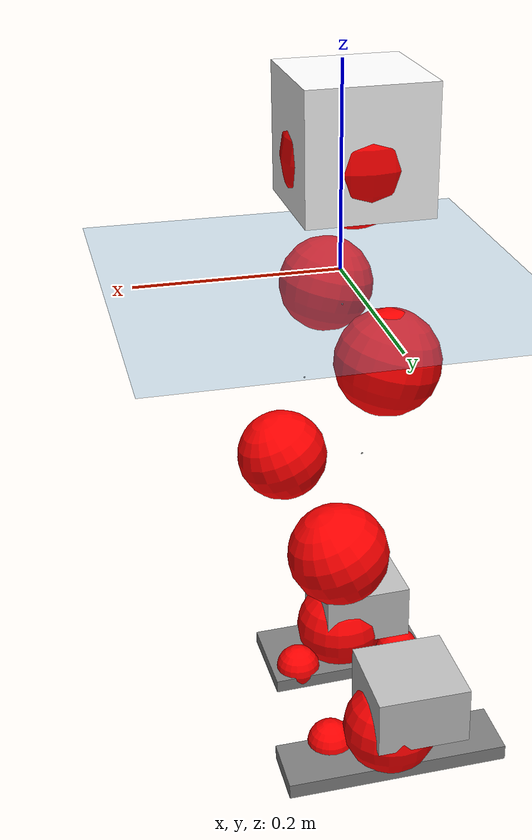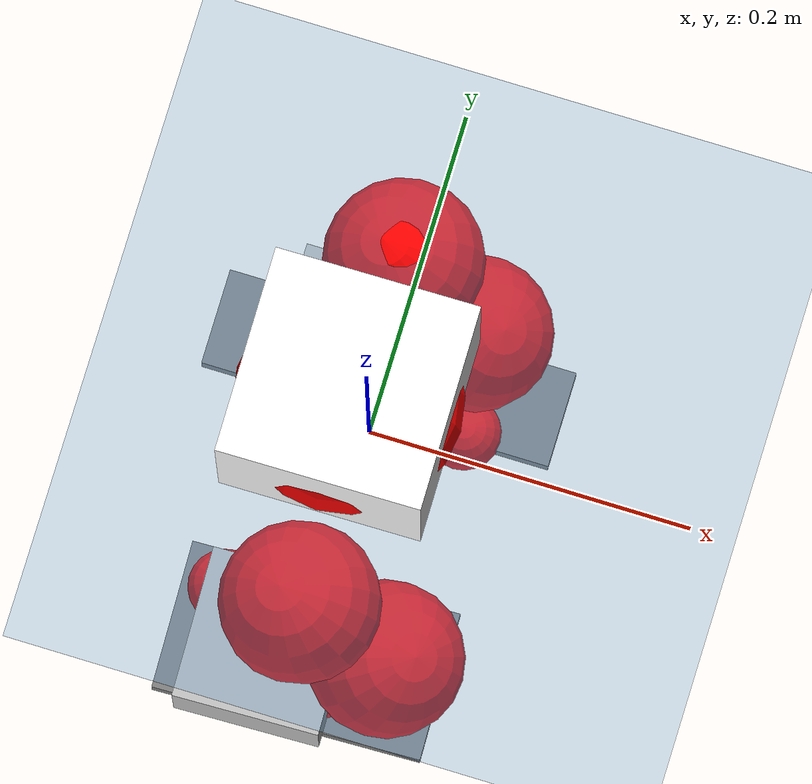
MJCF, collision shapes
<mujoco model="pi_12dof_release_v1">
  <compiler angle="radian" assetdir="assets" balanceinertia="true" inertiafromgeom="false"/>

  <option timestep="0.005" density="1.2" viscosity="2e-05"/>

  <size nkey="1"/>

  <visual>
    <quality shadowsize="8192"/>
    <map shadowclip="0.5"/>
  </visual>

  <default>
    <default class="/">
      <joint armature="0.01" damping="0.01" frictionloss="0.01"/>
      <geom contype="0" conaffinity="0" group="1" solref="-1000 -80"/>
      <site size="0.01 0.005 0.005" group="5"/>
      <general forcelimited="true" biastype="affine" gainprm="20" biasprm="0 -20 -0.5"/>
      <default class="foot">
        <geom size="0.0845 0.036 0.005" type="box" condim="6" group="4" priority="1" friction="0.9 0.2 0.2" solimp="0.015 1 0.005"/>
      </default>
      <default class="reward_collision_sphere">
        <geom group="5" rgba="1 0 0 1"/>
      </default>
    </default>
  </default>

  <asset>
    <texture type="skybox" colorspace="auto" name="//unnamed_texture_0" builtin="gradient" rgb1="0.95 0.95 0.95" rgb2="0.95 0.95 0.95" width="100" height="600"/>
    <texture type="2d" colorspace="auto" name="texplane" builtin="checker" rgb1="0.345 0.575 0.748" rgb2="0.345 0.575 0.748" markrgb="1 1 1" width="512" height="512"/>
    <material name="MatPlane" class="/" texture="texplane" texuniform="true" texrepeat="2 2" specular="0.9"/>
    <mesh name="baselink_1" class="/" file="baselink_1.STL"/>
    <mesh name="r_hip_pitch_link" class="/" file="r_hip_pitch_link.STL"/>
    <mesh name="r_hip_roll_link" class="/" file="r_hip_roll_link.STL"/>
    <mesh name="r_thigh_link" class="/" file="r_thigh_link.STL"/>
    <mesh name="r_calf_link" class="/" file="r_calf_link.STL"/>
    <mesh name="r_ankle_pitch_link" class="/" file="r_ankle_pitch_link.STL"/>
    <mesh name="r_ankle_roll_link" class="/" file="r_ankle_roll_link.STL"/>
    <mesh name="l_hip_pitch_link" class="/" file="l_hip_pitch_link.STL"/>
    <mesh name="l_hip_roll_link" class="/" file="l_hip_roll_link.STL"/>
    <mesh name="l_thigh_link" class="/" file="l_thigh_link.STL"/>
    <mesh name="l_calf_link" class="/" file="l_calf_link.STL"/>
    <mesh name="l_ankle_pitch_link" class="/" file="l_ankle_pitch_link.STL"/>
    <mesh name="l_ankle_roll_link" class="/" file="l_ankle_roll_link.STL"/>
  </asset>

  <worldbody>
    <geom name="floor" class="/" size="100 100 0.125" type="plane" group="0" material="MatPlane"/>
    <light name="toplight_shadow" class="/" pos="0 0 5" dir="0.0990148 0.0990148 -0.990148" type="directional" ambient="0.04 0.04 0.04" diffuse="0.55 0.55 0.55" specular="0.12 0.12 0.12"/>
    <light name="toplight_fill" class="/" pos="0 0 5" dir="0.0990148 0.0990148 -0.990148" type="directional" castshadow="false" ambient="0.04 0.04 0.04" diffuse="0.3 0.3 0.3" specular="0.08 0.08 0.08"/>
    <body name="trunk" pos="-0.0115576 -0.0015099 0.00399737" quat="0.999987 0.00160861 0.00172158 0.00447526">
      <inertial pos="0.0130162 -0.00390752 0.0612472" quat="0.695322 0.00966556 0.00941323 0.718572" mass="4.57976" diaginertia="0.00526057 0.0340787 0.0319593"/>
      <joint name="//unnamed_joint_0" type="free"/>
      <geom name="//unnamed_geom_1" class="/" type="mesh" density="0" rgba="1 1 1 1" mesh="baselink_1"/>
      <geom name="//unnamed_geom_2" class="/" size="0.0621869 0.0621869 0.0621869" pos="0 0 0.12205" type="box" rgba="1 1 1 1"/>
      <geom name="//unnamed_geom_3" class="reward_collision_sphere" size="0.0684056" pos="0 0 0.106794"/>
      <site name="imu" class="/" pos="-0.00687803 -0.0244451 -0.0483707" size="0.0124374"/>
      <camera name="track" class="/" pos="0 -2.62905 0" quat="0.707107 0.707107 0 0" mode="trackcom"/>
      <camera name="ego_camera" class="/" pos="0.0668299 0 0.274612" quat="-0.5 -0.5 0.5 0.5"/>
      <body name="r_hip_pitch_link" pos="0.00102723 -0.0288929 -0.0533407" quat="0.992347 -0.000954597 -0.123471 -0.00113721">
        <inertial pos="0.000354327 -0.0655839 -0.000527634" quat="-0.0243716 0.706828 -0.0264878 0.706469" mass="0.742237" diaginertia="5.17402e-05 0.000360486 0.000684231"/>
        <joint name="r_hip_pitch_joint" class="/" pos="0 0 0" axis="0.0207788 -0.999779 0.0032016" stiffness="0.00589451" range="-1.662 1.25504" armature="0.0137809" damping="0" frictionloss="0.00792377"/>
        <geom name="//unnamed_geom_4" class="/" type="mesh" density="0" rgba="0.75294 0.75294 0.75294 1" mesh="r_hip_pitch_link"/>
        <geom name="//unnamed_geom_5" class="/" size="0.000621869 0.000621869 0.000621869" type="box" rgba="0.75294 0.75294 0.75294 1"/>
        <body name="r_hip_roll_link" pos="-0.00400934 -0.072711 -0.00493606" quat="0.99999 0.00314568 -0.000568909 0.00303454">
          <inertial pos="-0.00843193 0.00635315 -0.082907" quat="0.706063 -0.0802461 -0.0831829 0.698653" mass="0.797669" diaginertia="0.000193634 0.00121091 0.000983101"/>
          <joint name="r_hip_roll_joint" class="/" pos="0 0 0" axis="-0.999341 -0.0259672 -0.0253795" stiffness="0.0110047" range="-0.0918713 0.637196" armature="0.0141634" damping="0.0534387" frictionloss="0.00715592"/>
          <geom name="//unnamed_geom_6" class="/" type="mesh" density="0" rgba="0.75294 0.75294 0.75294 1" mesh="r_hip_roll_link"/>
          <geom name="//unnamed_geom_7" class="/" size="0.000621869 0.000621869 0.000621869" type="box" rgba="0.75294 0.75294 0.75294 1"/>
          <geom name="//unnamed_geom_8" class="reward_collision_sphere" size="0.0497496"/>
          <body name="r_thigh_link" pos="0.00107338 0.0100901 -0.104212" quat="0.999996 0.00191246 0.000283652 0.00219311">
            <inertial pos="0.00833984 -0.000145147 -0.0789347" quat="0.740452 0.671966 -0.0121522 0.00669208" mass="0.211505" diaginertia="6.37972e-05 0.000292359 0.000398709"/>
            <joint name="r_thigh_joint" class="/" pos="0 0 0" axis="-0.00230781 -0.0106552 -0.999941" stiffness="0.0260776" range="-0.142241 0.483479" armature="0.015467" damping="0.00366675" frictionloss="0.0196721"/>
            <geom name="//unnamed_geom_9" class="/" type="mesh" density="0" rgba="0.75294 0.75294 0.75294 1" mesh="r_thigh_link"/>
            <geom name="//unnamed_geom_10" class="/" size="0.000621869 0.000621869 0.000621869" type="box" rgba="0.75294 0.75294 0.75294 1"/>
            <body name="r_calf_link" pos="0.00108916 -0.00497084 -0.0968701" quat="0.947363 -0.00237076 0.320139 0.00288417">
              <inertial pos="-0.00491029 0.00775661 -0.108637" quat="0.999275 0.00730568 -0.0216844 -0.0304152" mass="1.58853" diaginertia="0.00229834 0.0145555 0.0016513"/>
              <joint name="r_calf_joint" class="/" pos="0 0 0" axis="-0.0339018 -0.998996 0.0292884" stiffness="0.0438278" range="-1.87125 0.630693" armature="0.0124792" damping="0.00537784" frictionloss="0.00776672"/>
              <geom name="//unnamed_geom_11" class="/" type="mesh" density="0" rgba="0.75294 0.75294 0.75294 1" mesh="r_calf_link"/>
              <geom name="//unnamed_geom_12" class="/" size="0.000621869 0.000621869 0.000621869" type="box" rgba="0.75294 0.75294 0.75294 1"/>
              <geom name="//unnamed_geom_13" class="reward_collision_sphere" size="0.0497496"/>
              <body name="r_ankle_pitch_link" pos="-0.000292832 0.0115512 -0.212058" quat="0.980119 -0.000177332 -0.19841 0.00088654">
                <inertial pos="-0.000867525 0.0121143 -0.00133867" quat="0.00466056 0.726564 0.0105021 0.687003" mass="0.330182" diaginertia="0.000178899 0.000939283 0.000930858"/>
                <joint name="r_ankle_pitch_joint" class="/" pos="0 0 0" axis="0.0166008 -0.998681 0.0485958" stiffness="0.000685666" range="-1.37386 0.491484" armature="0.0132963" damping="0.0407114" frictionloss="0.00922635"/>
                <geom name="//unnamed_geom_14" class="/" type="mesh" density="0" rgba="0.75294 0.75294 0.75294 1" mesh="r_ankle_pitch_link"/>
                <geom name="//unnamed_geom_15" class="/" size="0.0485058 0.0497496 0.0310935" type="box" rgba="0.75294 0.75294 0.75294 1"/>
                <body name="r_ankle_roll_link" pos="0.0682513 0.0118992 0.00284546" quat="1 0.000243469 0.00036415 8.22409e-05">
                  <inertial pos="-0.0225833 0.00199557 -0.0208531" quat="0.577723 0.404658 0.462232 0.537429" mass="0.970437" diaginertia="0.000632738 0.00400605 0.00253174"/>
                  <joint name="r_ankle_roll_joint" class="/" pos="0 0 0" axis="-0.998515 -0.0512838 -0.0183742" range="0.048249 0.188288" armature="0.00654338" damping="0" frictionloss="0.0115611"/>
                  <geom name="//unnamed_geom_16" class="/" type="mesh" density="0" rgba="0.75294 0.75294 0.75294 1" mesh="r_ankle_roll_link"/>
                  <geom name="//unnamed_geom_17" class="/" type="mesh" rgba="0.75294 0.75294 0.75294 1" mesh="r_ankle_roll_link"/>
                  <geom name="right_foot" class="foot" size="0.0899929 0.0494598 0.00733098" pos="-0.0454443 0 -0.0671275"/>
                  <geom name="//unnamed_geom_19" class="reward_collision_sphere" size="0.0497496" pos="-0.0445533 0 -0.0305125"/>
                  <geom name="//unnamed_geom_20" class="reward_collision_sphere" size="0.0248748" pos="0.013366 0.0262905 -0.061025"/>
                  <geom name="//unnamed_geom_21" class="reward_collision_sphere" size="0.0248748" pos="-0.106928 0.0262905 -0.061025"/>
                  <site name="right_foot" class="foot" pos="-0.0454443 0 -0.0671275" size="0.0124374"/>
                </body>
              </body>
            </body>
          </body>
        </body>
      </body>
      <body name="l_hip_pitch_link" pos="-0.00232968 0.0322641 -0.0431413" quat="0.992162 -0.000265998 -0.124952 -0.00106482">
        <inertial pos="-0.00200969 0.0608882 0.00686269" quat="-0.0617477 0.664897 0.0304604 0.743755" mass="0.648807" diaginertia="7.28634e-05 0.000401219 0.000726647"/>
        <joint name="l_hip_pitch_joint" class="/" pos="0 0 0" axis="0.0560401 0.998374 -0.0103947" stiffness="0.0122316" range="-1.29387 1.76763" armature="0.0131735" damping="0" frictionloss="0.0127895"/>
        <geom name="//unnamed_geom_22" class="/" type="mesh" density="0" rgba="0.75294 0.75294 0.75294 1" mesh="l_hip_pitch_link"/>
        <geom name="//unnamed_geom_23" class="/" size="0.000621869 0.000621869 0.000621869" type="box" rgba="0.75294 0.75294 0.75294 1"/>
        <body name="l_hip_roll_link" pos="-0.00082464 0.0836936 -0.00946883" quat="1 0.000221684 0.00019783 0.000169193">
          <inertial pos="-0.000280247 0.000644148 -0.0925506" quat="0.698005 -0.0702114 -0.0671364 0.709473" mass="0.636775" diaginertia="0.000188083 0.00107468 0.000963689"/>
          <joint name="l_hip_roll_joint" class="/" pos="0 0 0" axis="-0.99994 -0.0105762 0.00267667" stiffness="0.0584841" range="-0.517311 -0.0427529" armature="0.0145673" damping="0" frictionloss="0.0139112"/>
          <geom name="//unnamed_geom_24" class="/" type="mesh" density="0" rgba="0.75294 0.75294 0.75294 1" mesh="l_hip_roll_link"/>
          <geom name="//unnamed_geom_25" class="/" size="0.000621869 0.000621869 0.000621869" type="box" rgba="0.75294 0.75294 0.75294 1"/>
          <geom name="//unnamed_geom_26" class="reward_collision_sphere" size="0.0497496"/>
          <body name="l_thigh_link" pos="-0.00160534 -0.003197 -0.0955197" quat="1 -6.19352e-06 -0.00019295 -0.000102812">
            <inertial pos="0.00247974 -0.0126356 -0.0719891" quat="0.672722 0.739534 -0.0209754 -0.00971471" mass="0.210807" diaginertia="7.24693e-05 0.00036882 0.000531292"/>
            <joint name="l_thigh_joint" class="/" pos="0 0 0" axis="-0.00483152 -0.0106959 -0.999931" range="-0.572158 0.16245" armature="0.00985655" damping="0.0510038" frictionloss="0.0095636"/>
            <geom name="//unnamed_geom_27" class="/" type="mesh" density="0" rgba="0.75294 0.75294 0.75294 1" mesh="l_thigh_link"/>
            <geom name="//unnamed_geom_28" class="/" size="0.000621869 0.000621869 0.000621869" type="box" rgba="0.75294 0.75294 0.75294 1"/>
            <body name="l_calf_link" pos="-0.00320892 0.00439185 -0.107817" quat="0.94662 0.00339482 0.322325 -0.00250728">
              <inertial pos="-0.010681 -0.00225544 -0.0955751" quat="0.999311 0.03672 0.000628291 0.00543836" mass="1.56729" diaginertia="0.0019496 0.0135268 0.0014289"/>
              <joint name="l_calf_joint" class="/" pos="0 0 0" axis="-0.0193746 0.999721 0.0134834" stiffness="0.00408059" range="-0.663448 1.75915" armature="0.011516" damping="0.0142035" frictionloss="0.0178754"/>
              <geom name="//unnamed_geom_29" class="/" type="mesh" density="0" rgba="0.75294 0.75294 0.75294 1" mesh="l_calf_link"/>
              <geom name="//unnamed_geom_30" class="/" size="0.000621869 0.000621869 0.000621869" type="box" rgba="0.75294 0.75294 0.75294 1"/>
              <geom name="//unnamed_geom_31" class="reward_collision_sphere" size="0.0497496"/>
              <body name="l_ankle_pitch_link" pos="0.00182427 -0.00121265 -0.202678" quat="0.980022 -1.47156e-06 -0.198891 0.000199617">
                <inertial pos="0.00323587 -9.80606e-05 9.55418e-06" quat="-0.00730422 0.710276 -0.00156218 0.703883" mass="0.374082" diaginertia="0.000171479 0.000799469 0.000995749"/>
                <joint name="l_ankle_pitch_joint" class="/" pos="0 0 0" axis="0.0111444 0.999904 -0.00820566" stiffness="0.02512" range="-0.505935 1.33911" armature="0.01271" damping="0.0111325" frictionloss="0.0101996"/>
                <geom name="//unnamed_geom_32" class="/" type="mesh" density="0" rgba="0.75294 0.75294 0.75294 1" mesh="l_ankle_pitch_link"/>
                <geom name="//unnamed_geom_33" class="/" size="0.0485058 0.0497496 0.0310935" type="box" rgba="0.75294 0.75294 0.75294 1"/>
                <body name="l_ankle_roll_link" pos="0.0664101 0.00205322 -0.00507466" quat="1 -0.000919812 0.000180487 8.59039e-05">
                  <inertial pos="-0.0142613 0.000641718 -0.0242802" quat="0.560789 0.411241 0.432989 0.573513" mass="0.972573" diaginertia="0.00060965 0.00410896 0.00208401"/>
                  <joint name="l_ankle_roll_joint" class="/" pos="0 0 0" axis="-0.998595 -0.0455996 -0.0270058" stiffness="0.0440214" range="-0.175489 0.0772286" armature="0.0138069" damping="0" frictionloss="0.0143535"/>
                  <geom name="//unnamed_geom_34" class="/" type="mesh" density="0" rgba="0.75294 0.75294 0.75294 1" mesh="l_ankle_roll_link"/>
                  <geom name="//unnamed_geom_35" class="/" type="mesh" rgba="0.75294 0.75294 0.75294 1" mesh="l_ankle_roll_link"/>
                  <geom name="left_foot" class="foot" size="0.117639 0.0320299 0.00825329" pos="-0.0454443 0 -0.0671275"/>
                  <geom name="//unnamed_geom_37" class="reward_collision_sphere" size="0.0497496" pos="-0.0445533 0 -0.0305125"/>
                  <geom name="//unnamed_geom_38" class="reward_collision_sphere" size="0.0248748" pos="0.013366 -0.0262905 -0.061025"/>
                  <geom name="//unnamed_geom_39" class="reward_collision_sphere" size="0.0248748" pos="-0.106928 -0.0262905 -0.061025"/>
                  <site name="left_foot" class="foot" pos="-0.0454443 0 -0.0671275" size="0.0124374"/>
                </body>
              </body>
            </body>
          </body>
        </body>
      </body>
    </body>
  </worldbody>

  <contact>
    <pair class="/" geom1="floor" geom2="right_foot" name="//unnamed_contact_1"/>
    <pair class="/" geom1="floor" geom2="left_foot" name="//unnamed_contact_0"/>
  </contact>

  <actuator>
    <general name="r_hip_pitch_joint" class="/" joint="r_hip_pitch_joint" forcerange="-24.527 24.527" gainprm="26.126" biasprm="0 -26.126 -0.574381"/>
    <general name="r_hip_roll_joint" class="/" joint="r_hip_roll_joint" forcerange="-20.6541 20.6541" gainprm="26.126" biasprm="0 -26.126 -0.574381"/>
    <general name="r_thigh_joint" class="/" joint="r_thigh_joint" forcerange="-26.0104 26.0104" gainprm="26.126" biasprm="0 -26.126 -0.574381"/>
    <general name="r_calf_joint" class="/" joint="r_calf_joint" forcerange="-15.0607 15.0607" gainprm="26.126" biasprm="0 -26.126 -0.574381"/>
    <general name="r_ankle_pitch_joint" class="/" joint="r_ankle_pitch_joint" forcerange="-25.9128 25.9128" gainprm="26.126" biasprm="0 -26.126 -0.574381"/>
    <general name="r_ankle_roll_joint" class="/" joint="r_ankle_roll_joint" forcerange="-35.5976 35.5976" gainprm="26.126" biasprm="0 -26.126 -0.574381"/>
    <general name="l_hip_pitch_joint" class="/" joint="l_hip_pitch_joint" forcerange="-27.2319 27.2319" gainprm="26.126" biasprm="0 -26.126 -0.574381"/>
    <general name="l_hip_roll_joint" class="/" joint="l_hip_roll_joint" forcerange="-30.7393 30.7393" gainprm="26.126" biasprm="0 -26.126 -0.574381"/>
    <general name="l_thigh_joint" class="/" joint="l_thigh_joint" forcerange="-25.3526 25.3526" gainprm="26.126" biasprm="0 -26.126 -0.574381"/>
    <general name="l_calf_joint" class="/" joint="l_calf_joint" forcerange="-24.5554 24.5554" gainprm="26.126" biasprm="0 -26.126 -0.574381"/>
    <general name="l_ankle_pitch_joint" class="/" joint="l_ankle_pitch_joint" forcerange="-21.6027 21.6027" gainprm="26.126" biasprm="0 -26.126 -0.574381"/>
    <general name="l_ankle_roll_joint" class="/" joint="l_ankle_roll_joint" forcerange="-24.4741 24.4741" gainprm="26.126" biasprm="0 -26.126 -0.574381"/>
  </actuator>

  <sensor>
    <gyro site="imu" name="imu_angular_velocity"/>
    <velocimeter site="imu" name="imu_linear_velocity"/>
    <framelinvel objtype="site" objname="left_foot" name="left_foot_global_linear_velocity"/>
    <framelinvel objtype="site" objname="right_foot" name="right_foot_global_linear_velocity"/>
  </sensor>

  <keyframe>
    <key name="home" qpos="0 0 0.291 1 0 0 0 0.4 0 0 -0.8 0.4 0 -0.4 0 0 0.8 -0.4 0"/>
  </keyframe>
</mujoco>
